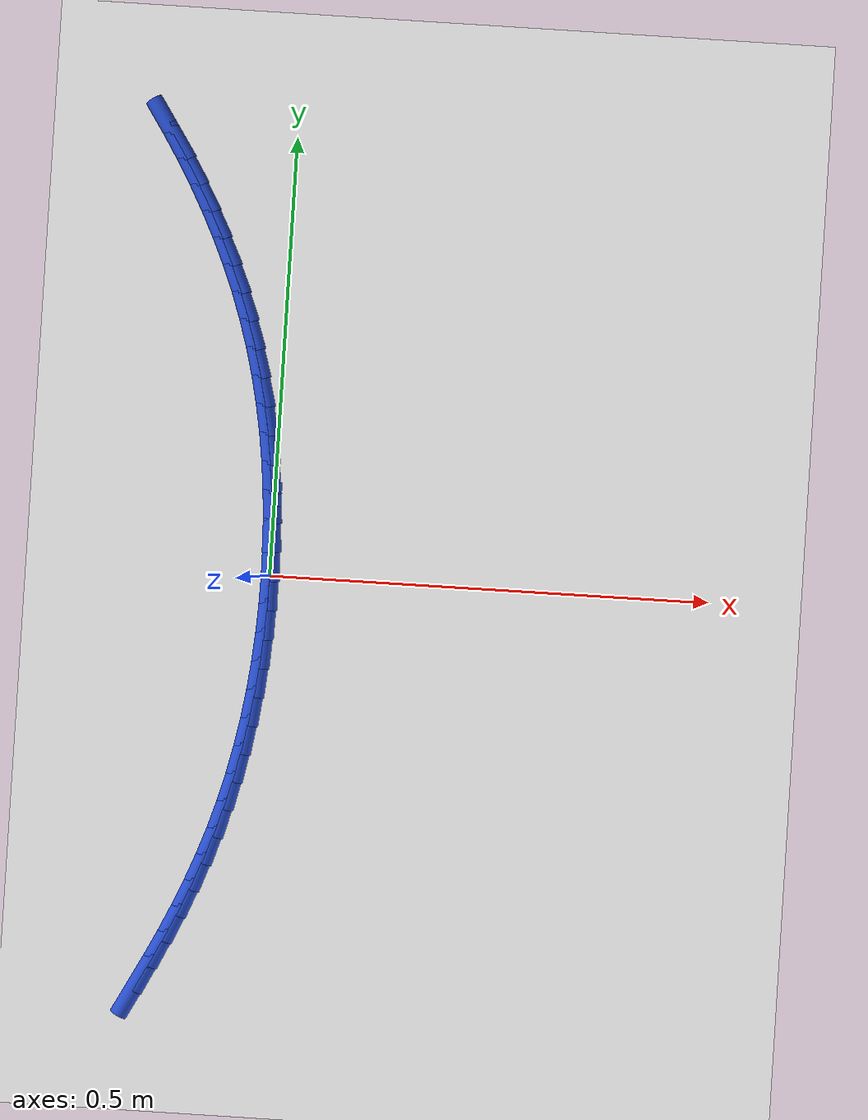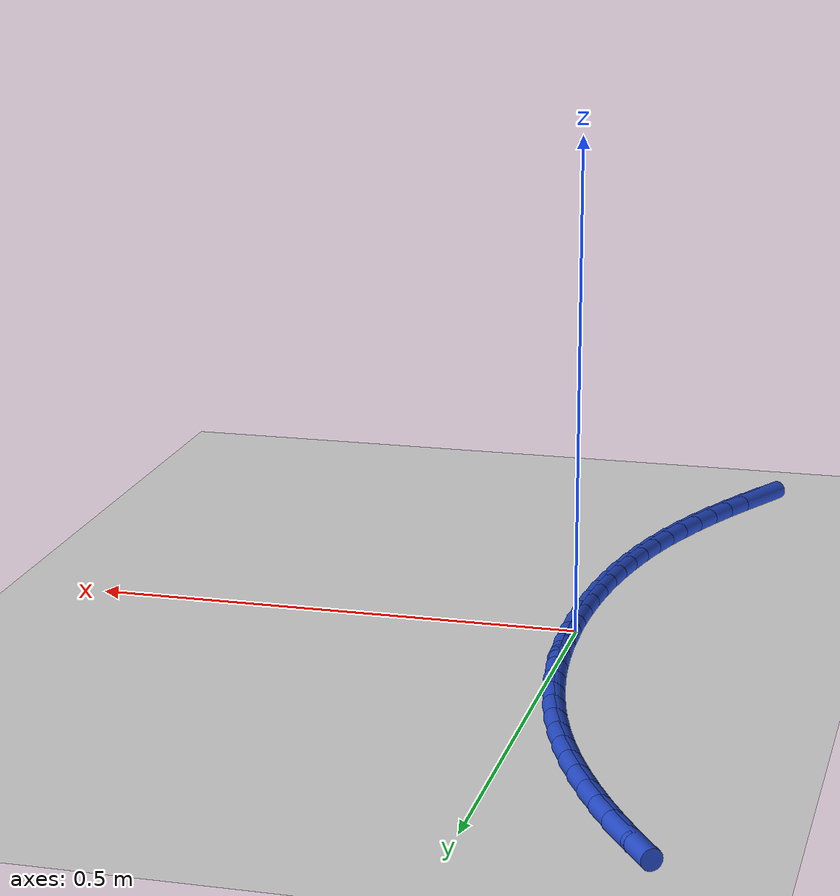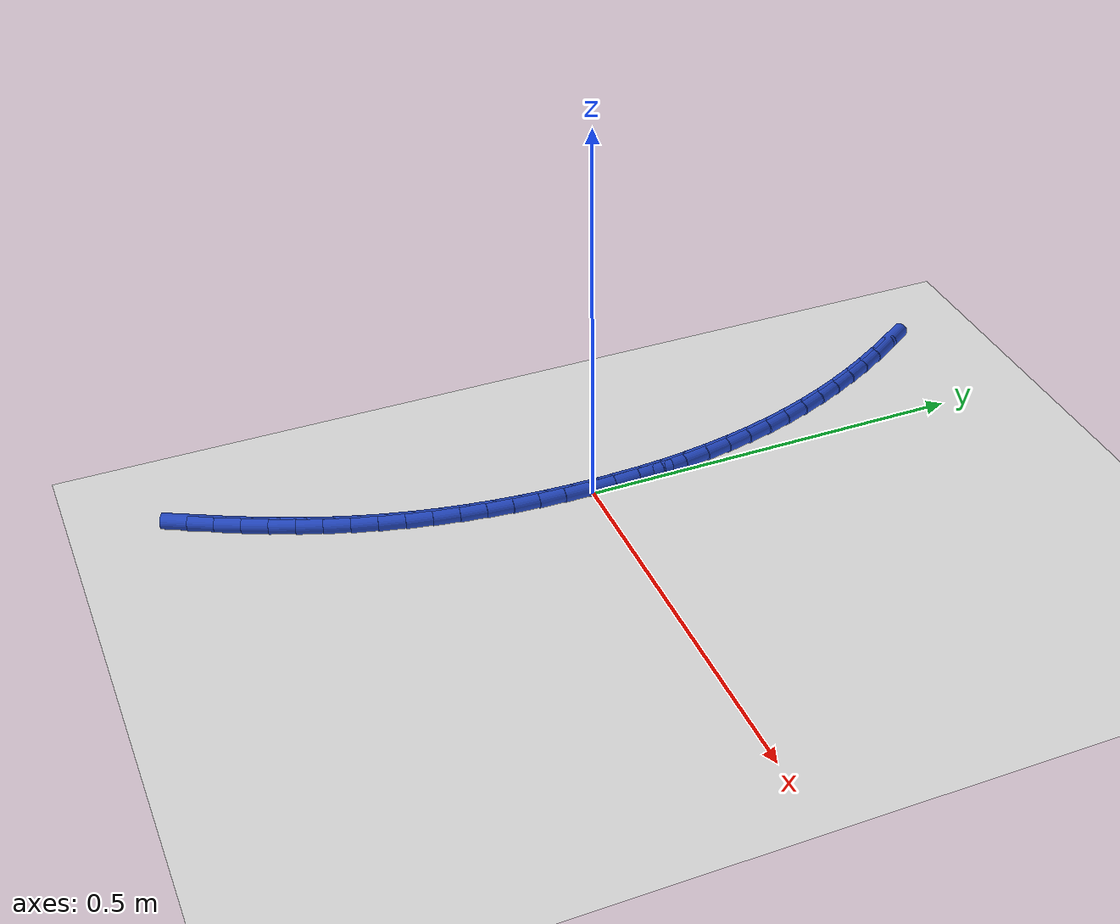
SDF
<sdf version="1.6">
 <world name="default">
  <model name="ground_plane">
   <static>1</static>
   <link name="link">
    <collision name="collision">
     <geometry><plane><normal>0 0 1</normal><size>100 100</size></plane></geometry>
     <surface><friction><ode><mu>100</mu><mu2>50</mu2></ode></friction></surface>
    </collision>
    <visual name="visual">
     <cast_shadows>0</cast_shadows>
     <geometry><plane><normal>0 0 1</normal><size>100 100</size></plane></geometry>
     <material>
      <script><uri>file://media/materials/scripts/gazebo.material</uri><name>Gazebo/WhiteGlow</name></script>
     </material>
    </visual>
   </link>
  </model>
  <model name="line">
   <link name="link_0">
    <pose>-5.204170427930421e-18 -9.020562075079397e-17 0.01 0 1.57 -1.5581858213434019</pose>
    <collision name="collision">
     <geometry><cylinder><radius>0.01</radius><length>0.08</length></cylinder></geometry>
    </collision>
    <visual name="visual">
     <material>
      <script><name>Gazebo/Blue</name><uri>file://media/materials/scripts/gazebo.material</uri></script>
     </material>
     <geometry><cylinder><radius>0.01</radius><length>0.08</length></cylinder></geometry>
    </visual>
   </link>
   <link name="link_1">
    <pose>-0.00041625024051693304 0.03300646252234803 0.01 0 1.57 -1.5276875130593688</pose>
    <collision name="collision">
     <geometry><cylinder><radius>0.01</radius><length>0.08</length></cylinder></geometry>
    </collision>
    <visual name="visual">
     <material>
      <script><name>Gazebo/Blue</name><uri>file://media/materials/scripts/gazebo.material</uri></script>
     </material>
     <geometry><cylinder><radius>0.01</radius><length>0.08</length></cylinder></geometry>
    </visual>
   </link>
   <link name="link_2">
    <pose>-0.0018379684515828368 0.06596578768294657 0.01 0 1.57 -1.495853896881133</pose>
    <collision name="collision">
     <geometry><cylinder><radius>0.01</radius><length>0.08</length></cylinder></geometry>
    </collision>
    <visual name="visual">
     <material>
      <script><name>Gazebo/Blue</name><uri>file://media/materials/scripts/gazebo.material</uri></script>
     </material>
     <geometry><cylinder><radius>0.01</radius><length>0.08</length></cylinder></geometry>
    </visual>
   </link>
   <link name="link_3">
    <pose>-0.004305659109008439 0.09883193720745101 0.01 0 1.57 -1.4626195965446775</pose>
    <collision name="collision">
     <geometry><cylinder><radius>0.01</radius><length>0.08</length></cylinder></geometry>
    </collision>
    <visual name="visual">
     <material>
      <script><name>Gazebo/Blue</name><uri>file://media/materials/scripts/gazebo.material</uri></script>
     </material>
     <geometry><cylinder><radius>0.01</radius><length>0.08</length></cylinder></geometry>
    </visual>
   </link>
   <link name="link_4">
    <pose>-0.007859826688604462 0.13155887282151715 0.01 0 1.57 -1.4279255702663163</pose>
    <collision name="collision">
     <geometry><cylinder><radius>0.01</radius><length>0.08</length></cylinder></geometry>
    </collision>
    <visual name="visual">
     <material>
      <script><name>Gazebo/Blue</name><uri>file://media/materials/scripts/gazebo.material</uri></script>
     </material>
     <geometry><cylinder><radius>0.01</radius><length>0.08</length></cylinder></geometry>
    </visual>
   </link>
   <link name="link_5">
    <pose>-0.012540975666181616 0.16410055625080058 0.01 0 1.57 -1.3917213437353402</pose>
    <collision name="collision">
     <geometry><cylinder><radius>0.01</radius><length>0.08</length></cylinder></geometry>
    </collision>
    <visual name="visual">
     <material>
      <script><name>Gazebo/Blue</name><uri>file://media/materials/scripts/gazebo.material</uri></script>
     </material>
     <geometry><cylinder><radius>0.01</radius><length>0.08</length></cylinder></geometry>
    </visual>
   </link>
   <link name="link_6">
    <pose>-0.018389610517550635 0.196410949220957 0.01 0 1.57 -1.353967596230536</pose>
    <collision name="collision">
     <geometry><cylinder><radius>0.01</radius><length>0.08</length></cylinder></geometry>
    </collision>
    <visual name="visual">
     <material>
      <script><name>Gazebo/Blue</name><uri>file://media/materials/scripts/gazebo.material</uri></script>
     </material>
     <geometry><cylinder><radius>0.01</radius><length>0.08</length></cylinder></geometry>
    </visual>
   </link>
   <link name="link_7">
    <pose>-0.025446235718522225 0.22844401345764204 0.01 0 1.57 -1.3146390618482513</pose>
    <collision name="collision">
     <geometry><cylinder><radius>0.01</radius><length>0.08</length></cylinder></geometry>
    </collision>
    <visual name="visual">
     <material>
      <script><name>Gazebo/Blue</name><uri>file://media/materials/scripts/gazebo.material</uri></script>
     </material>
     <geometry><cylinder><radius>0.01</radius><length>0.08</length></cylinder></geometry>
    </visual>
   </link>
   <link name="link_8">
    <pose>-0.0337513557449071 0.2601537106865113 0.01 0 1.57 -1.2737276682083056</pose>
    <collision name="collision">
     <geometry><cylinder><radius>0.01</radius><length>0.08</length></cylinder></geometry>
    </collision>
    <visual name="visual">
     <material>
      <script><name>Gazebo/Blue</name><uri>file://media/materials/scripts/gazebo.material</uri></script>
     </material>
     <geometry><cylinder><radius>0.01</radius><length>0.08</length></cylinder></geometry>
    </visual>
   </link>
   <link name="link_9">
    <pose>-0.043345475072515974 0.29149400263322034 0.01 0 1.57 -1.2316776889360885</pose>
    <collision name="collision">
     <geometry><cylinder><radius>0.01</radius><length>0.08</length></cylinder></geometry>
    </collision>
    <visual name="visual">
     <material>
      <script><name>Gazebo/Blue</name><uri>file://media/materials/scripts/gazebo.material</uri></script>
     </material>
     <geometry><cylinder><radius>0.01</radius><length>0.08</length></cylinder></geometry>
    </visual>
   </link>
   <link name="link_10">
    <pose>-0.054255466085487127 0.3224227877599737 0.01 0 1.57 -1.1908780590909505</pose>
    <collision name="collision">
     <geometry><cylinder><radius>0.01</radius><length>0.08</length></cylinder></geometry>
    </collision>
    <visual name="visual">
     <material>
      <script><name>Gazebo/Blue</name><uri>file://media/materials/scripts/gazebo.material</uri></script>
     </material>
     <geometry><cylinder><radius>0.01</radius><length>0.08</length></cylinder></geometry>
    </visual>
   </link>
   <link name="link_11">
    <pose>-0.06643337950137554 0.3529195718652918 0.01 0 1.57 -1.1521259638891292</pose>
    <collision name="collision">
     <geometry><cylinder><radius>0.01</radius><length>0.08</length></cylinder></geometry>
    </collision>
    <visual name="visual">
     <material>
      <script><name>Gazebo/Blue</name><uri>file://media/materials/scripts/gazebo.material</uri></script>
     </material>
     <geometry><cylinder><radius>0.01</radius><length>0.08</length></cylinder></geometry>
    </visual>
   </link>
   <link name="link_12">
    <pose>-0.0798057293247777 0.3829712353541494 0.01 0 1.57 -1.1153851185606396</pose>
    <collision name="collision">
     <geometry><cylinder><radius>0.01</radius><length>0.08</length></cylinder></geometry>
    </collision>
    <visual name="visual">
     <material>
      <script><name>Gazebo/Blue</name><uri>file://media/materials/scripts/gazebo.material</uri></script>
     </material>
     <geometry><cylinder><radius>0.01</radius><length>0.08</length></cylinder></geometry>
    </visual>
   </link>
   <link name="link_13">
    <pose>-0.09429900768920726 0.412564664947551 0.01 0 1.57 -1.0806005177791245</pose>
    <collision name="collision">
     <geometry><cylinder><radius>0.01</radius><length>0.08</length></cylinder></geometry>
    </collision>
    <visual name="visual">
     <material>
      <script><name>Gazebo/Blue</name><uri>file://media/materials/scripts/gazebo.material</uri></script>
     </material>
     <geometry><cylinder><radius>0.01</radius><length>0.08</length></cylinder></geometry>
    </visual>
   </link>
   <link name="link_14">
    <pose>-0.10983970672817783 0.44168674736650076 0.01 0 1.57 -1.0477038576816564</pose>
    <collision name="collision">
     <geometry><cylinder><radius>0.01</radius><length>0.08</length></cylinder></geometry>
    </collision>
    <visual name="visual">
     <material>
      <script><name>Gazebo/Blue</name><uri>file://media/materials/scripts/gazebo.material</uri></script>
     </material>
     <geometry><cylinder><radius>0.01</radius><length>0.08</length></cylinder></geometry>
    </visual>
   </link>
   <link name="link_15">
    <pose>-0.1263543185752029 0.47032436933200306 0.01 0 1.57 -1.016617632504621</pose>
    <collision name="collision">
     <geometry><cylinder><radius>0.01</radius><length>0.08</length></cylinder></geometry>
    </collision>
    <visual name="visual">
     <material>
      <script><name>Gazebo/Blue</name><uri>file://media/materials/scripts/gazebo.material</uri></script>
     </material>
     <geometry><cylinder><radius>0.01</radius><length>0.08</length></cylinder></geometry>
    </visual>
   </link>
   <link name="link_16">
    <pose>-0.14376933536379616 0.49846441756506205 0.01 0 1.57 -0.9872585701645155</pose>
    <collision name="collision">
     <geometry><cylinder><radius>0.01</radius><length>0.08</length></cylinder></geometry>
    </collision>
    <visual name="visual">
     <material>
      <script><name>Gazebo/Blue</name><uri>file://media/materials/scripts/gazebo.material</uri></script>
     </material>
     <geometry><cylinder><radius>0.01</radius><length>0.08</length></cylinder></geometry>
    </visual>
   </link>
   <link name="link_195">
    <pose>-0.12169410121695458 -0.47148661014182724 0.01 0 1.57 1.0912943268857136</pose>
    <collision name="collision">
     <geometry><cylinder><radius>0.01</radius><length>0.08</length></cylinder></geometry>
    </collision>
    <visual name="visual">
     <material>
      <script><name>Gazebo/Blue</name><uri>file://media/materials/scripts/gazebo.material</uri></script>
     </material>
     <geometry><cylinder><radius>0.01</radius><length>0.08</length></cylinder></geometry>
    </visual>
   </link>
   <link name="link_196">
    <pose>-0.10653228905484201 -0.44232804724247876 0.01 0 1.57 1.114366588466271</pose>
    <collision name="collision">
     <geometry><cylinder><radius>0.01</radius><length>0.08</length></cylinder></geometry>
    </collision>
    <visual name="visual">
     <material>
      <script><name>Gazebo/Blue</name><uri>file://media/materials/scripts/gazebo.material</uri></script>
     </material>
     <geometry><cylinder><radius>0.01</radius><length>0.08</length></cylinder></geometry>
    </visual>
   </link>
   <link name="link_197">
    <pose>-0.09206645212053682 -0.4128666545906779 0.01 0 1.57 1.140870842167074</pose>
    <collision name="collision">
     <geometry><cylinder><radius>0.01</radius><length>0.08</length></cylinder></geometry>
    </collision>
    <visual name="visual">
     <material>
      <script><name>Gazebo/Blue</name><uri>file://media/materials/scripts/gazebo.material</uri></script>
     </material>
     <geometry><cylinder><radius>0.01</radius><length>0.08</length></cylinder></geometry>
    </visual>
   </link>
   <link name="link_198">
    <pose>-0.07840722606485208 -0.38307754354368395 0.01 0 1.57 1.1708451456209459</pose>
    <collision name="collision">
     <geometry><cylinder><radius>0.01</radius><length>0.08</length></cylinder></geometry>
    </collision>
    <visual name="visual">
     <material>
      <script><name>Gazebo/Blue</name><uri>file://media/materials/scripts/gazebo.material</uri></script>
     </material>
     <geometry><cylinder><radius>0.01</radius><length>0.08</length></cylinder></geometry>
    </visual>
   </link>
   <link name="link_199">
    <pose>-0.06566524653860141 -0.3529358254587583 0.01 0 1.57 1.204309489151263</pose>
    <collision name="collision">
     <geometry><cylinder><radius>0.01</radius><length>0.08</length></cylinder></geometry>
    </collision>
    <visual name="visual">
     <material>
      <script><name>Gazebo/Blue</name><uri>file://media/materials/scripts/gazebo.material</uri></script>
     </material>
     <geometry><cylinder><radius>0.01</radius><length>0.08</length></cylinder></geometry>
    </visual>
   </link>
   <link name="link_200">
    <pose>-0.053951149192598226 -0.3224166116931608 0.01 0 1.57 1.2412538621684561</pose>
    <collision name="collision">
     <geometry><cylinder><radius>0.01</radius><length>0.08</length></cylinder></geometry>
    </collision>
    <visual name="visual">
     <material>
      <script><name>Gazebo/Blue</name><uri>file://media/materials/scripts/gazebo.material</uri></script>
     </material>
     <geometry><cylinder><radius>0.01</radius><length>0.08</length></cylinder></geometry>
    </visual>
   </link>
   <link name="link_201">
    <pose>-0.043375542710957414 -0.29149502734906374 0.01 0 1.57 1.2805650986789612</pose>
    <collision name="collision">
     <geometry><cylinder><radius>0.01</radius><length>0.08</length></cylinder></geometry>
    </collision>
    <visual name="visual">
     <material>
      <script><name>Gazebo/Blue</name><uri>file://media/materials/scripts/gazebo.material</uri></script>
     </material>
     <geometry><cylinder><radius>0.01</radius><length>0.08</length></cylinder></geometry>
    </visual>
   </link>
   <link name="link_202">
    <pose>-0.034017549415396586 -0.26016224610985894 0.01 0 1.57 1.3190887180657374</pose>
    <collision name="collision">
     <geometry><cylinder><radius>0.01</radius><length>0.08</length></cylinder></geometry>
    </collision>
    <visual name="visual">
     <material>
      <script><name>Gazebo/Blue</name><uri>file://media/materials/scripts/gazebo.material</uri></script>
     </material>
     <geometry><cylinder><radius>0.01</radius><length>0.08</length></cylinder></geometry>
    </visual>
   </link>
   <link name="link_203">
    <pose>-0.02586403769843742 -0.2284564634348124 0.01 0 1.57 1.3562740239320308</pose>
    <collision name="collision">
     <geometry><cylinder><radius>0.01</radius><length>0.08</length></cylinder></geometry>
    </collision>
    <visual name="visual">
     <material>
      <script><name>Gazebo/Blue</name><uri>file://media/materials/scripts/gazebo.material</uri></script>
     </material>
     <geometry><cylinder><radius>0.01</radius><length>0.08</length></cylinder></geometry>
    </visual>
   </link>
   <link name="link_204">
    <pose>-0.01888506779959678 -0.19642444188932934 0.01 0 1.57 1.3921549082698474</pose>
    <collision name="collision">
     <geometry><cylinder><radius>0.01</radius><length>0.08</length></cylinder></geometry>
    </collision>
    <visual name="visual">
     <material>
      <script><name>Gazebo/Blue</name><uri>file://media/materials/scripts/gazebo.material</uri></script>
     </material>
     <geometry><cylinder><radius>0.01</radius><length>0.08</length></cylinder></geometry>
    </visual>
   </link>
   <link name="link_205">
    <pose>-0.013050699958391792 -0.16411294403881585 0.01 0 1.57 1.4267759839991645</pose>
    <collision name="collision">
     <geometry><cylinder><radius>0.01</radius><length>0.08</length></cylinder></geometry>
    </collision>
    <visual name="visual">
     <material>
      <script><name>Gazebo/Blue</name><uri>file://media/materials/scripts/gazebo.material</uri></script>
     </material>
     <geometry><cylinder><radius>0.01</radius><length>0.08</length></cylinder></geometry>
    </visual>
   </link>
   <link name="link_206">
    <pose>-0.008330994414339543 -0.13156873244867784 0.01 0 1.57 1.4601904649997468</pose>
    <collision name="collision">
     <geometry><cylinder><radius>0.01</radius><length>0.08</length></cylinder></geometry>
    </collision>
    <visual name="visual">
     <material>
      <script><name>Gazebo/Blue</name><uri>file://media/materials/scripts/gazebo.material</uri></script>
     </material>
     <geometry><cylinder><radius>0.01</radius><length>0.08</length></cylinder></geometry>
    </visual>
   </link>
   <link name="link_207">
    <pose>-0.004696011406957133 -0.09883856968432124 0.01 0 1.57 1.4924583047144724</pose>
    <collision name="collision">
     <geometry><cylinder><radius>0.01</radius><length>0.08</length></cylinder></geometry>
    </collision>
    <visual name="visual">
     <material>
      <script><name>Gazebo/Blue</name><uri>file://media/materials/scripts/gazebo.material</uri></script>
     </material>
     <geometry><cylinder><radius>0.01</radius><length>0.08</length></cylinder></geometry>
    </visual>
   </link>
   <link name="link_208">
    <pose>-0.0021158111757616717 -0.06596921831115209 0.01 0 1.57 1.5236446104949168</pose>
    <collision name="collision">
     <geometry><cylinder><radius>0.01</radius><length>0.08</length></cylinder></geometry>
    </collision>
    <visual name="visual">
     <material>
      <script><name>Gazebo/Blue</name><uri>file://media/materials/scripts/gazebo.material</uri></script>
     </material>
     <geometry><cylinder><radius>0.01</radius><length>0.08</length></cylinder></geometry>
    </visual>
   </link>
   <link name="link_209">
    <pose>-0.0005604539602702325 -0.03300744089457551 0.01 0 1.57 1.5538183335503013</pose>
    <collision name="collision">
     <geometry><cylinder><radius>0.01</radius><length>0.08</length></cylinder></geometry>
    </collision>
    <visual name="visual">
     <material>
      <script><name>Gazebo/Blue</name><uri>file://media/materials/scripts/gazebo.material</uri></script>
     </material>
     <geometry><cylinder><radius>0.01</radius><length>0.08</length></cylinder></geometry>
    </visual>
   </link>
   <link name="link_210">
    <pose>2.6020852139652106e-18 1.457167719820518e-16 0.01 0 1.57 -1.5585414308555832</pose>
    <collision name="collision">
     <geometry><cylinder><radius>0.01</radius><length>0.08</length></cylinder></geometry>
    </collision>
    <visual name="visual">
     <material>
      <script><name>Gazebo/Blue</name><uri>file://media/materials/scripts/gazebo.material</uri></script>
     </material>
     <geometry><cylinder><radius>0.01</radius><length>0.08</length></cylinder></geometry>
    </visual>
   </link>
   <link name="link_211">
    <pose>-0.0004045095344679889 0.03300634180717126 0.01 0 1.57 -1.5301756300943905</pose>
    <collision name="collision">
     <geometry><cylinder><radius>0.01</radius><length>0.08</length></cylinder></geometry>
    </collision>
    <visual name="visual">
     <material>
      <script><name>Gazebo/Blue</name><uri>file://media/materials/scripts/gazebo.material</uri></script>
     </material>
     <geometry><cylinder><radius>0.01</radius><length>0.08</length></cylinder></geometry>
    </visual>
   </link>
   <link name="link_212">
    <pose>-0.0017440428031914252 0.06596482196153261 0.01 0 1.57 -1.544363501719345</pose>
    <collision name="collision">
     <geometry><cylinder><radius>0.01</radius><length>0.08</length></cylinder></geometry>
    </collision>
    <visual name="visual">
     <material>
      <script><name>Gazebo/Blue</name><uri>file://media/materials/scripts/gazebo.material</uri></script>
     </material>
     <geometry><cylinder><radius>0.01</radius><length>0.08</length></cylinder></geometry>
    </visual>
   </link>
  </model>
 </world>
</sdf>
